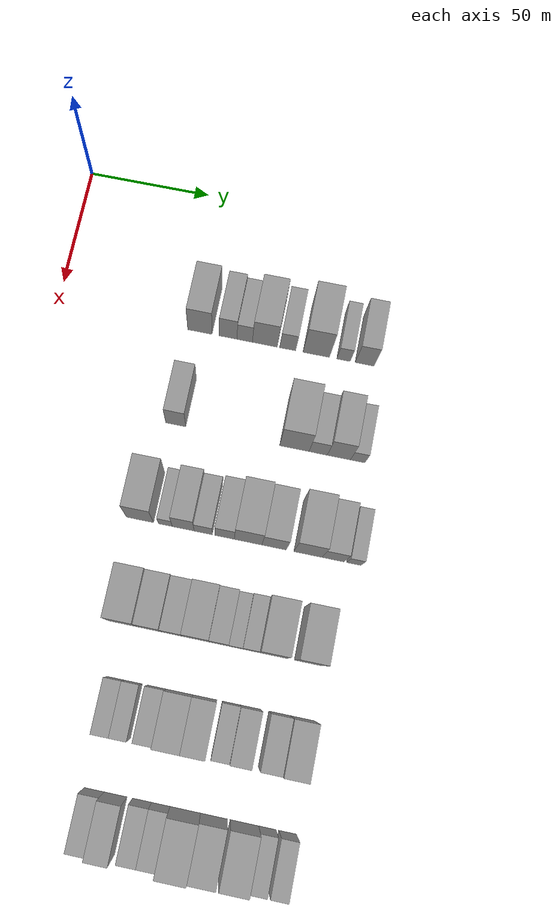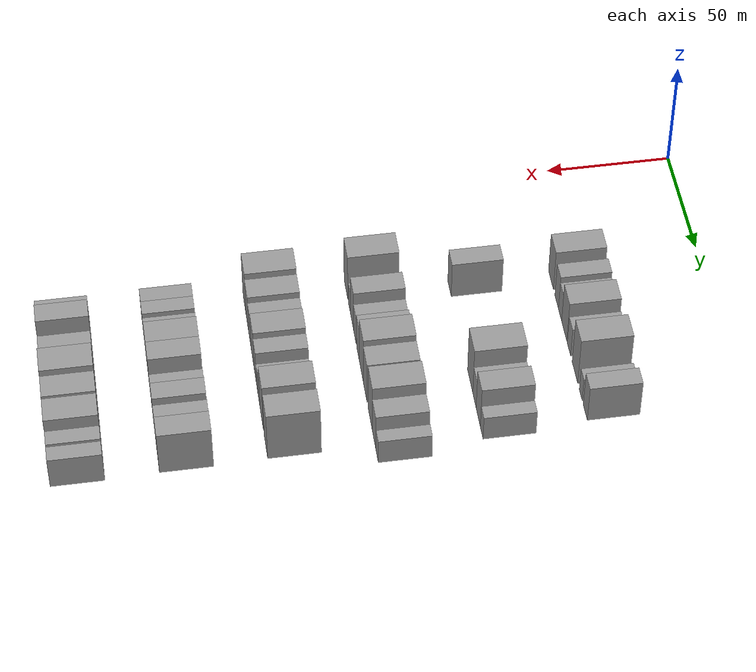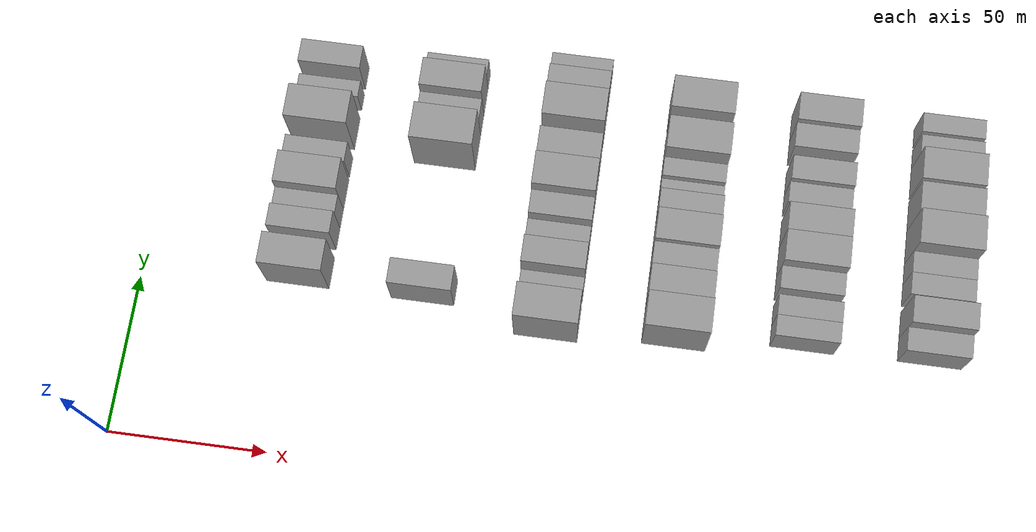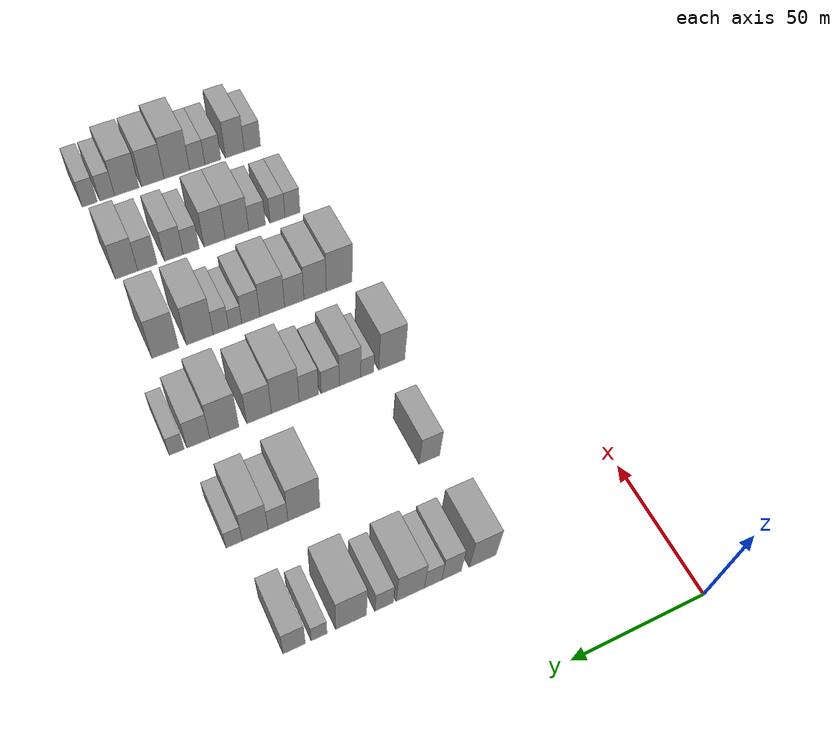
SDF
<sdf version="1.6">
 <world name="default">
  <model name="building_74">
   <static>1</static>
   <pose>50.0000 59.1140 0 0.000000 0.000000 0.000000</pose>
   <link name="link">
    <pose>0 0 10.50 0 0 0</pose>
    <collision name="collision"><geometry><box><size>20.0000 9.9876 21.0000</size></box></geometry></collision>
    <visual name="visual">
     <cast_shadows>0</cast_shadows>
     <geometry><box><size>20.0000 9.9876 21.0000</size></box></geometry>
     <material>
      <script>
       <uri>model://grey_wall/materials/scripts</uri>
       <uri>model://grey_wall/materials/textures</uri>
       <name>vrc/grey_wall</name>
      </script>
     </material>
    </visual>
   </link>
  </model>
  <model name="building_75">
   <static>1</static>
   <pose>50.0000 70.7340 0 0.000000 0.000000 0.000000</pose>
   <link name="link">
    <pose>0 0 9.00 0 0 0</pose>
    <collision name="collision"><geometry><box><size>20.0000 7.2524 18.0000</size></box></geometry></collision>
    <visual name="visual">
     <cast_shadows>0</cast_shadows>
     <geometry><box><size>20.0000 7.2524 18.0000</size></box></geometry>
     <material>
      <script>
       <uri>model://grey_wall/materials/scripts</uri>
       <uri>model://grey_wall/materials/textures</uri>
       <name>vrc/grey_wall</name>
      </script>
     </material>
    </visual>
   </link>
  </model>
  <model name="building_76">
   <static>1</static>
   <pose>50.0000 77.5407 0 0.000000 0.000000 0.000000</pose>
   <link name="link">
    <pose>0 0 7.50 0 0 0</pose>
    <collision name="collision"><geometry><box><size>20.0000 6.3612 15.0000</size></box></geometry></collision>
    <visual name="visual">
     <cast_shadows>0</cast_shadows>
     <geometry><box><size>20.0000 6.3612 15.0000</size></box></geometry>
     <material>
      <script>
       <uri>model://grey_wall/materials/scripts</uri>
       <uri>model://grey_wall/materials/textures</uri>
       <name>vrc/grey_wall</name>
      </script>
     </material>
    </visual>
   </link>
  </model>
  <model name="building_77">
   <static>1</static>
   <pose>50.0000 85.8204 0 0.000000 0.000000 0.000000</pose>
   <link name="link">
    <pose>0 0 10.50 0 0 0</pose>
    <collision name="collision"><geometry><box><size>20.0000 10.1982 21.0000</size></box></geometry></collision>
    <visual name="visual">
     <cast_shadows>0</cast_shadows>
     <geometry><box><size>20.0000 10.1982 21.0000</size></box></geometry>
     <material>
      <script>
       <uri>model://grey_wall/materials/scripts</uri>
       <uri>model://grey_wall/materials/textures</uri>
       <name>vrc/grey_wall</name>
      </script>
     </material>
    </visual>
   </link>
  </model>
  <model name="building_78">
   <static>1</static>
   <pose>50.0000 95.2017 0 0.000000 0.000000 0.000000</pose>
   <link name="link">
    <pose>0 0 7.50 0 0 0</pose>
    <collision name="collision"><geometry><box><size>20.0000 6.5644 15.0000</size></box></geometry></collision>
    <visual name="visual">
     <cast_shadows>0</cast_shadows>
     <geometry><box><size>20.0000 6.5644 15.0000</size></box></geometry>
     <material>
      <script>
       <uri>model://grey_wall/materials/scripts</uri>
       <uri>model://grey_wall/materials/textures</uri>
       <name>vrc/grey_wall</name>
      </script>
     </material>
    </visual>
   </link>
  </model>
  <model name="building_79">
   <static>1</static>
   <pose>50.0000 106.8875 0 0.000000 0.000000 0.000000</pose>
   <link name="link">
    <pose>0 0 12.00 0 0 0</pose>
    <collision name="collision"><geometry><box><size>20.0000 10.8072 24.0000</size></box></geometry></collision>
    <visual name="visual">
     <cast_shadows>0</cast_shadows>
     <geometry><box><size>20.0000 10.8072 24.0000</size></box></geometry>
     <material>
      <script>
       <uri>model://grey_wall/materials/scripts</uri>
       <uri>model://grey_wall/materials/textures</uri>
       <name>vrc/grey_wall</name>
      </script>
     </material>
    </visual>
   </link>
  </model>
  <model name="building_80">
   <static>1</static>
   <pose>50.0000 118.0348 0 0.000000 0.000000 0.000000</pose>
   <link name="link">
    <pose>0 0 6.00 0 0 0</pose>
    <collision name="collision"><geometry><box><size>20.0000 5.4872 12.0000</size></box></geometry></collision>
    <visual name="visual">
     <cast_shadows>0</cast_shadows>
     <geometry><box><size>20.0000 5.4872 12.0000</size></box></geometry>
     <material>
      <script>
       <uri>model://grey_wall/materials/scripts</uri>
       <uri>model://grey_wall/materials/textures</uri>
       <name>vrc/grey_wall</name>
      </script>
     </material>
    </visual>
   </link>
  </model>
  <model name="building_81">
   <static>1</static>
   <pose>50.0000 126.5961 0 0.000000 0.000000 0.000000</pose>
   <link name="link">
    <pose>0 0 9.00 0 0 0</pose>
    <collision name="collision"><geometry><box><size>20.0000 7.6355 18.0000</size></box></geometry></collision>
    <visual name="visual">
     <cast_shadows>0</cast_shadows>
     <geometry><box><size>20.0000 7.6355 18.0000</size></box></geometry>
     <material>
      <script>
       <uri>model://grey_wall/materials/scripts</uri>
       <uri>model://grey_wall/materials/textures</uri>
       <name>vrc/grey_wall</name>
      </script>
     </material>
    </visual>
   </link>
  </model>
  <model name="building_214">
   <static>1</static>
   <pose>90.0000 57.9060 0 0.000000 0.000000 0.000000</pose>
   <link name="link">
    <pose>0 0 9.00 0 0 0</pose>
    <collision name="collision"><geometry><box><size>20.0000 8.0514 18.0000</size></box></geometry></collision>
    <visual name="visual">
     <cast_shadows>0</cast_shadows>
     <geometry><box><size>20.0000 8.0514 18.0000</size></box></geometry>
     <material>
      <script>
       <uri>model://grey_wall/materials/scripts</uri>
       <uri>model://grey_wall/materials/textures</uri>
       <name>vrc/grey_wall</name>
      </script>
     </material>
    </visual>
   </link>
  </model>
  <model name="building_215">
   <static>1</static>
   <pose>90.0000 105.5255 0 0.000000 0.000000 0.000000</pose>
   <link name="link">
    <pose>0 0 12.00 0 0 0</pose>
    <collision name="collision"><geometry><box><size>20.0000 11.7292 24.0000</size></box></geometry></collision>
    <visual name="visual">
     <cast_shadows>0</cast_shadows>
     <geometry><box><size>20.0000 11.7292 24.0000</size></box></geometry>
     <material>
      <script>
       <uri>model://grey_wall/materials/scripts</uri>
       <uri>model://grey_wall/materials/textures</uri>
       <name>vrc/grey_wall</name>
      </script>
     </material>
    </visual>
   </link>
  </model>
  <model name="building_216">
   <static>1</static>
   <pose>90.0000 115.0183 0 0.000000 0.000000 0.000000</pose>
   <link name="link">
    <pose>0 0 7.50 0 0 0</pose>
    <collision name="collision"><geometry><box><size>20.0000 7.2564 15.0000</size></box></geometry></collision>
    <visual name="visual">
     <cast_shadows>0</cast_shadows>
     <geometry><box><size>20.0000 7.2564 15.0000</size></box></geometry>
     <material>
      <script>
       <uri>model://grey_wall/materials/scripts</uri>
       <uri>model://grey_wall/materials/textures</uri>
       <name>vrc/grey_wall</name>
      </script>
     </material>
    </visual>
   </link>
  </model>
  <model name="building_217">
   <static>1</static>
   <pose>90.0000 123.2755 0 0.000000 0.000000 0.000000</pose>
   <link name="link">
    <pose>0 0 10.50 0 0 0</pose>
    <collision name="collision"><geometry><box><size>20.0000 9.2580 21.0000</size></box></geometry></collision>
    <visual name="visual">
     <cast_shadows>0</cast_shadows>
     <geometry><box><size>20.0000 9.2580 21.0000</size></box></geometry>
     <material>
      <script>
       <uri>model://grey_wall/materials/scripts</uri>
       <uri>model://grey_wall/materials/textures</uri>
       <name>vrc/grey_wall</name>
      </script>
     </material>
    </visual>
   </link>
  </model>
  <model name="building_218">
   <static>1</static>
   <pose>90.0000 130.7831 0 0.000000 0.000000 0.000000</pose>
   <link name="link">
    <pose>0 0 6.00 0 0 0</pose>
    <collision name="collision"><geometry><box><size>20.0000 5.7571 12.0000</size></box></geometry></collision>
    <visual name="visual">
     <cast_shadows>0</cast_shadows>
     <geometry><box><size>20.0000 5.7571 12.0000</size></box></geometry>
     <material>
      <script>
       <uri>model://grey_wall/materials/scripts</uri>
       <uri>model://grey_wall/materials/textures</uri>
       <name>vrc/grey_wall</name>
      </script>
     </material>
    </visual>
   </link>
  </model>
  <model name="building_352">
   <static>1</static>
   <pose>130.0000 52.5645 0 0.000000 0.000000 0.000000</pose>
   <link name="link">
    <pose>0 0 12.00 0 0 0</pose>
    <collision name="collision"><geometry><box><size>20.0000 10.6612 24.0000</size></box></geometry></collision>
    <visual name="visual">
     <cast_shadows>0</cast_shadows>
     <geometry><box><size>20.0000 10.6612 24.0000</size></box></geometry>
     <material>
      <script>
       <uri>model://grey_wall/materials/scripts</uri>
       <uri>model://grey_wall/materials/textures</uri>
       <name>vrc/grey_wall</name>
      </script>
     </material>
    </visual>
   </link>
  </model>
  <model name="building_353">
   <static>1</static>
   <pose>130.0000 62.5911 0 0.000000 0.000000 0.000000</pose>
   <link name="link">
    <pose>0 0 6.00 0 0 0</pose>
    <collision name="collision"><geometry><box><size>20.0000 5.3920 12.0000</size></box></geometry></collision>
    <visual name="visual">
     <cast_shadows>0</cast_shadows>
     <geometry><box><size>20.0000 5.3920 12.0000</size></box></geometry>
     <material>
      <script>
       <uri>model://grey_wall/materials/scripts</uri>
       <uri>model://grey_wall/materials/textures</uri>
       <name>vrc/grey_wall</name>
      </script>
     </material>
    </visual>
   </link>
  </model>
  <model name="building_354">
   <static>1</static>
   <pose>130.0000 69.5810 0 0.000000 0.000000 0.000000</pose>
   <link name="link">
    <pose>0 0 10.50 0 0 0</pose>
    <collision name="collision"><geometry><box><size>20.0000 8.5878 21.0000</size></box></geometry></collision>
    <visual name="visual">
     <cast_shadows>0</cast_shadows>
     <geometry><box><size>20.0000 8.5878 21.0000</size></box></geometry>
     <material>
      <script>
       <uri>model://grey_wall/materials/scripts</uri>
       <uri>model://grey_wall/materials/textures</uri>
       <name>vrc/grey_wall</name>
      </script>
     </material>
    </visual>
   </link>
  </model>
  <model name="building_355">
   <static>1</static>
   <pose>130.0000 77.4540 0 0.000000 0.000000 0.000000</pose>
   <link name="link">
    <pose>0 0 7.50 0 0 0</pose>
    <collision name="collision"><geometry><box><size>20.0000 7.1582 15.0000</size></box></geometry></collision>
    <visual name="visual">
     <cast_shadows>0</cast_shadows>
     <geometry><box><size>20.0000 7.1582 15.0000</size></box></geometry>
     <material>
      <script>
       <uri>model://grey_wall/materials/scripts</uri>
       <uri>model://grey_wall/materials/textures</uri>
       <name>vrc/grey_wall</name>
      </script>
     </material>
    </visual>
   </link>
  </model>
  <model name="building_356">
   <static>1</static>
   <pose>130.0000 85.8312 0 0.000000 0.000000 0.000000</pose>
   <link name="link">
    <pose>0 0 9.00 0 0 0</pose>
    <collision name="collision"><geometry><box><size>20.0000 7.5961 18.0000</size></box></geometry></collision>
    <visual name="visual">
     <cast_shadows>0</cast_shadows>
     <geometry><box><size>20.0000 7.5961 18.0000</size></box></geometry>
     <material>
      <script>
       <uri>model://grey_wall/materials/scripts</uri>
       <uri>model://grey_wall/materials/textures</uri>
       <name>vrc/grey_wall</name>
      </script>
     </material>
    </visual>
   </link>
  </model>
  <model name="building_357">
   <static>1</static>
   <pose>130.0000 95.0210 0 0.000000 0.000000 0.000000</pose>
   <link name="link">
    <pose>0 0 12.00 0 0 0</pose>
    <collision name="collision"><geometry><box><size>20.0000 10.7835 24.0000</size></box></geometry></collision>
    <visual name="visual">
     <cast_shadows>0</cast_shadows>
     <geometry><box><size>20.0000 10.7835 24.0000</size></box></geometry>
     <material>
      <script>
       <uri>model://grey_wall/materials/scripts</uri>
       <uri>model://grey_wall/materials/textures</uri>
       <name>vrc/grey_wall</name>
      </script>
     </material>
    </visual>
   </link>
  </model>
  <model name="building_358">
   <static>1</static>
   <pose>130.0000 105.1671 0 0.000000 0.000000 0.000000</pose>
   <link name="link">
    <pose>0 0 10.50 0 0 0</pose>
    <collision name="collision"><geometry><box><size>20.0000 9.5088 21.0000</size></box></geometry></collision>
    <visual name="visual">
     <cast_shadows>0</cast_shadows>
     <geometry><box><size>20.0000 9.5088 21.0000</size></box></geometry>
     <material>
      <script>
       <uri>model://grey_wall/materials/scripts</uri>
       <uri>model://grey_wall/materials/textures</uri>
       <name>vrc/grey_wall</name>
      </script>
     </material>
    </visual>
   </link>
  </model>
  <model name="building_359">
   <static>1</static>
   <pose>130.0000 118.3889 0 0.000000 0.000000 0.000000</pose>
   <link name="link">
    <pose>0 0 12.00 0 0 0</pose>
    <collision name="collision"><geometry><box><size>20.0000 10.9349 24.0000</size></box></geometry></collision>
    <visual name="visual">
     <cast_shadows>0</cast_shadows>
     <geometry><box><size>20.0000 10.9349 24.0000</size></box></geometry>
     <material>
      <script>
       <uri>model://grey_wall/materials/scripts</uri>
       <uri>model://grey_wall/materials/textures</uri>
       <name>vrc/grey_wall</name>
      </script>
     </material>
    </visual>
   </link>
  </model>
  <model name="building_360">
   <static>1</static>
   <pose>130.0000 128.1711 0 0.000000 0.000000 0.000000</pose>
   <link name="link">
    <pose>0 0 9.00 0 0 0</pose>
    <collision name="collision"><geometry><box><size>20.0000 8.6294 18.0000</size></box></geometry></collision>
    <visual name="visual">
     <cast_shadows>0</cast_shadows>
     <geometry><box><size>20.0000 8.6294 18.0000</size></box></geometry>
     <material>
      <script>
       <uri>model://grey_wall/materials/scripts</uri>
       <uri>model://grey_wall/materials/textures</uri>
       <name>vrc/grey_wall</name>
      </script>
     </material>
    </visual>
   </link>
  </model>
  <model name="building_361">
   <static>1</static>
   <pose>130.0000 136.2585 0 0.000000 0.000000 0.000000</pose>
   <link name="link">
    <pose>0 0 6.00 0 0 0</pose>
    <collision name="collision"><geometry><box><size>20.0000 5.5454 12.0000</size></box></geometry></collision>
    <visual name="visual">
     <cast_shadows>0</cast_shadows>
     <geometry><box><size>20.0000 5.5454 12.0000</size></box></geometry>
     <material>
      <script>
       <uri>model://grey_wall/materials/scripts</uri>
       <uri>model://grey_wall/materials/textures</uri>
       <name>vrc/grey_wall</name>
      </script>
     </material>
    </visual>
   </link>
  </model>
  <model name="building_480">
   <static>1</static>
   <pose>170.0000 55.1960 0 0.000000 0.000000 0.000000</pose>
   <link name="link">
    <pose>0 0 12.00 0 0 0</pose>
    <collision name="collision"><geometry><box><size>20.0000 10.9335 24.0000</size></box></geometry></collision>
    <visual name="visual">
     <cast_shadows>0</cast_shadows>
     <geometry><box><size>20.0000 10.9335 24.0000</size></box></geometry>
     <material>
      <script>
       <uri>model://grey_wall/materials/scripts</uri>
       <uri>model://grey_wall/materials/textures</uri>
       <name>vrc/grey_wall</name>
      </script>
     </material>
    </visual>
   </link>
  </model>
  <model name="building_481">
   <static>1</static>
   <pose>170.0000 65.3570 0 0.000000 0.000000 0.000000</pose>
   <link name="link">
    <pose>0 0 10.50 0 0 0</pose>
    <collision name="collision"><geometry><box><size>20.0000 9.3886 21.0000</size></box></geometry></collision>
    <visual name="visual">
     <cast_shadows>0</cast_shadows>
     <geometry><box><size>20.0000 9.3886 21.0000</size></box></geometry>
     <material>
      <script>
       <uri>model://grey_wall/materials/scripts</uri>
       <uri>model://grey_wall/materials/textures</uri>
       <name>vrc/grey_wall</name>
      </script>
     </material>
    </visual>
   </link>
  </model>
  <model name="building_482">
   <static>1</static>
   <pose>170.0000 74.0606 0 0.000000 0.000000 0.000000</pose>
   <link name="link">
    <pose>0 0 9.00 0 0 0</pose>
    <collision name="collision"><geometry><box><size>20.0000 8.0186 18.0000</size></box></geometry></collision>
    <visual name="visual">
     <cast_shadows>0</cast_shadows>
     <geometry><box><size>20.0000 8.0186 18.0000</size></box></geometry>
     <material>
      <script>
       <uri>model://grey_wall/materials/scripts</uri>
       <uri>model://grey_wall/materials/textures</uri>
       <name>vrc/grey_wall</name>
      </script>
     </material>
    </visual>
   </link>
  </model>
  <model name="building_483">
   <static>1</static>
   <pose>170.0000 83.1466 0 0.000000 0.000000 0.000000</pose>
   <link name="link">
    <pose>0 0 10.50 0 0 0</pose>
    <collision name="collision"><geometry><box><size>20.0000 10.1533 21.0000</size></box></geometry></collision>
    <visual name="visual">
     <cast_shadows>0</cast_shadows>
     <geometry><box><size>20.0000 10.1533 21.0000</size></box></geometry>
     <material>
      <script>
       <uri>model://grey_wall/materials/scripts</uri>
       <uri>model://grey_wall/materials/textures</uri>
       <name>vrc/grey_wall</name>
      </script>
     </material>
    </visual>
   </link>
  </model>
  <model name="building_484">
   <static>1</static>
   <pose>170.0000 91.8984 0 0.000000 0.000000 0.000000</pose>
   <link name="link">
    <pose>0 0 9.00 0 0 0</pose>
    <collision name="collision"><geometry><box><size>20.0000 7.3505 18.0000</size></box></geometry></collision>
    <visual name="visual">
     <cast_shadows>0</cast_shadows>
     <geometry><box><size>20.0000 7.3505 18.0000</size></box></geometry>
     <material>
      <script>
       <uri>model://grey_wall/materials/scripts</uri>
       <uri>model://grey_wall/materials/textures</uri>
       <name>vrc/grey_wall</name>
      </script>
     </material>
    </visual>
   </link>
  </model>
  <model name="building_485">
   <static>1</static>
   <pose>170.0000 98.1914 0 0.000000 0.000000 0.000000</pose>
   <link name="link">
    <pose>0 0 6.00 0 0 0</pose>
    <collision name="collision"><geometry><box><size>20.0000 5.2354 12.0000</size></box></geometry></collision>
    <visual name="visual">
     <cast_shadows>0</cast_shadows>
     <geometry><box><size>20.0000 5.2354 12.0000</size></box></geometry>
     <material>
      <script>
       <uri>model://grey_wall/materials/scripts</uri>
       <uri>model://grey_wall/materials/textures</uri>
       <name>vrc/grey_wall</name>
      </script>
     </material>
    </visual>
   </link>
  </model>
  <model name="building_486">
   <static>1</static>
   <pose>170.0000 103.9123 0 0.000000 0.000000 0.000000</pose>
   <link name="link">
    <pose>0 0 7.50 0 0 0</pose>
    <collision name="collision"><geometry><box><size>20.0000 6.2065 15.0000</size></box></geometry></collision>
    <visual name="visual">
     <cast_shadows>0</cast_shadows>
     <geometry><box><size>20.0000 6.2065 15.0000</size></box></geometry>
     <material>
      <script>
       <uri>model://grey_wall/materials/scripts</uri>
       <uri>model://grey_wall/materials/textures</uri>
       <name>vrc/grey_wall</name>
      </script>
     </material>
    </visual>
   </link>
  </model>
  <model name="building_487">
   <static>1</static>
   <pose>170.0000 112.3662 0 0.000000 0.000000 0.000000</pose>
   <link name="link">
    <pose>0 0 12.00 0 0 0</pose>
    <collision name="collision"><geometry><box><size>20.0000 10.7012 24.0000</size></box></geometry></collision>
    <visual name="visual">
     <cast_shadows>0</cast_shadows>
     <geometry><box><size>20.0000 10.7012 24.0000</size></box></geometry>
     <material>
      <script>
       <uri>model://grey_wall/materials/scripts</uri>
       <uri>model://grey_wall/materials/textures</uri>
       <name>vrc/grey_wall</name>
      </script>
     </material>
    </visual>
   </link>
  </model>
  <model name="building_488">
   <static>1</static>
   <pose>170.0000 125.9970 0 0.000000 0.000000 0.000000</pose>
   <link name="link">
    <pose>0 0 12.00 0 0 0</pose>
    <collision name="collision"><geometry><box><size>20.0000 10.5605 24.0000</size></box></geometry></collision>
    <visual name="visual">
     <cast_shadows>0</cast_shadows>
     <geometry><box><size>20.0000 10.5605 24.0000</size></box></geometry>
     <material>
      <script>
       <uri>model://grey_wall/materials/scripts</uri>
       <uri>model://grey_wall/materials/textures</uri>
       <name>vrc/grey_wall</name>
      </script>
     </material>
    </visual>
   </link>
  </model>
  <model name="building_622">
   <static>1</static>
   <pose>210.0000 57.3634 0 0.000000 0.000000 0.000000</pose>
   <link name="link">
    <pose>0 0 7.50 0 0 0</pose>
    <collision name="collision"><geometry><box><size>20.0000 6.5930 15.0000</size></box></geometry></collision>
    <visual name="visual">
     <cast_shadows>0</cast_shadows>
     <geometry><box><size>20.0000 6.5930 15.0000</size></box></geometry>
     <material>
      <script>
       <uri>model://grey_wall/materials/scripts</uri>
       <uri>model://grey_wall/materials/textures</uri>
       <name>vrc/grey_wall</name>
      </script>
     </material>
    </visual>
   </link>
  </model>
  <model name="building_623">
   <static>1</static>
   <pose>210.0000 63.9002 0 0.000000 0.000000 0.000000</pose>
   <link name="link">
    <pose>0 0 7.50 0 0 0</pose>
    <collision name="collision"><geometry><box><size>20.0000 6.4807 15.0000</size></box></geometry></collision>
    <visual name="visual">
     <cast_shadows>0</cast_shadows>
     <geometry><box><size>20.0000 6.4807 15.0000</size></box></geometry>
     <material>
      <script>
       <uri>model://grey_wall/materials/scripts</uri>
       <uri>model://grey_wall/materials/textures</uri>
       <name>vrc/grey_wall</name>
      </script>
     </material>
    </visual>
   </link>
  </model>
  <model name="building_624">
   <static>1</static>
   <pose>210.0000 72.7773 0 0.000000 0.000000 0.000000</pose>
   <link name="link">
    <pose>0 0 7.50 0 0 0</pose>
    <collision name="collision"><geometry><box><size>20.0000 7.2734 15.0000</size></box></geometry></collision>
    <visual name="visual">
     <cast_shadows>0</cast_shadows>
     <geometry><box><size>20.0000 7.2734 15.0000</size></box></geometry>
     <material>
      <script>
       <uri>model://grey_wall/materials/scripts</uri>
       <uri>model://grey_wall/materials/textures</uri>
       <name>vrc/grey_wall</name>
      </script>
     </material>
    </visual>
   </link>
  </model>
  <model name="building_625">
   <static>1</static>
   <pose>210.0000 81.4391 0 0.000000 0.000000 0.000000</pose>
   <link name="link">
    <pose>0 0 10.50 0 0 0</pose>
    <collision name="collision"><geometry><box><size>20.0000 10.0503 21.0000</size></box></geometry></collision>
    <visual name="visual">
     <cast_shadows>0</cast_shadows>
     <geometry><box><size>20.0000 10.0503 21.0000</size></box></geometry>
     <material>
      <script>
       <uri>model://grey_wall/materials/scripts</uri>
       <uri>model://grey_wall/materials/textures</uri>
       <name>vrc/grey_wall</name>
      </script>
     </material>
    </visual>
   </link>
  </model>
  <model name="building_626">
   <static>1</static>
   <pose>210.0000 90.9266 0 0.000000 0.000000 0.000000</pose>
   <link name="link">
    <pose>0 0 10.50 0 0 0</pose>
    <collision name="collision"><geometry><box><size>20.0000 8.9247 21.0000</size></box></geometry></collision>
    <visual name="visual">
     <cast_shadows>0</cast_shadows>
     <geometry><box><size>20.0000 8.9247 21.0000</size></box></geometry>
     <material>
      <script>
       <uri>model://grey_wall/materials/scripts</uri>
       <uri>model://grey_wall/materials/textures</uri>
       <name>vrc/grey_wall</name>
      </script>
     </material>
    </visual>
   </link>
  </model>
  <model name="building_627">
   <static>1</static>
   <pose>210.0000 100.7493 0 0.000000 0.000000 0.000000</pose>
   <link name="link">
    <pose>0 0 7.50 0 0 0</pose>
    <collision name="collision"><geometry><box><size>20.0000 6.7205 15.0000</size></box></geometry></collision>
    <visual name="visual">
     <cast_shadows>0</cast_shadows>
     <geometry><box><size>20.0000 6.7205 15.0000</size></box></geometry>
     <material>
      <script>
       <uri>model://grey_wall/materials/scripts</uri>
       <uri>model://grey_wall/materials/textures</uri>
       <name>vrc/grey_wall</name>
      </script>
     </material>
    </visual>
   </link>
  </model>
  <model name="building_628">
   <static>1</static>
   <pose>210.0000 108.0043 0 0.000000 0.000000 0.000000</pose>
   <link name="link">
    <pose>0 0 9.00 0 0 0</pose>
    <collision name="collision"><geometry><box><size>20.0000 7.7896 18.0000</size></box></geometry></collision>
    <visual name="visual">
     <cast_shadows>0</cast_shadows>
     <geometry><box><size>20.0000 7.7896 18.0000</size></box></geometry>
     <material>
      <script>
       <uri>model://grey_wall/materials/scripts</uri>
       <uri>model://grey_wall/materials/textures</uri>
       <name>vrc/grey_wall</name>
      </script>
     </material>
    </visual>
   </link>
  </model>
  <model name="building_629">
   <static>1</static>
   <pose>210.0000 118.9035 0 0.000000 0.000000 0.000000</pose>
   <link name="link">
    <pose>0 0 9.00 0 0 0</pose>
    <collision name="collision"><geometry><box><size>20.0000 8.0087 18.0000</size></box></geometry></collision>
    <visual name="visual">
     <cast_shadows>0</cast_shadows>
     <geometry><box><size>20.0000 8.0087 18.0000</size></box></geometry>
     <material>
      <script>
       <uri>model://grey_wall/materials/scripts</uri>
       <uri>model://grey_wall/materials/textures</uri>
       <name>vrc/grey_wall</name>
      </script>
     </material>
    </visual>
   </link>
  </model>
  <model name="building_630">
   <static>1</static>
   <pose>210.0000 127.4762 0 0.000000 0.000000 0.000000</pose>
   <link name="link">
    <pose>0 0 10.50 0 0 0</pose>
    <collision name="collision"><geometry><box><size>20.0000 9.1366 21.0000</size></box></geometry></collision>
    <visual name="visual">
     <cast_shadows>0</cast_shadows>
     <geometry><box><size>20.0000 9.1366 21.0000</size></box></geometry>
     <material>
      <script>
       <uri>model://grey_wall/materials/scripts</uri>
       <uri>model://grey_wall/materials/textures</uri>
       <name>vrc/grey_wall</name>
      </script>
     </material>
    </visual>
   </link>
  </model>
  <model name="building_761">
   <static>1</static>
   <pose>250.0000 58.3201 0 0.000000 0.000000 0.000000</pose>
   <link name="link">
    <pose>0 0 7.50 0 0 0</pose>
    <collision name="collision"><geometry><box><size>20.0000 7.4149 15.0000</size></box></geometry></collision>
    <visual name="visual">
     <cast_shadows>0</cast_shadows>
     <geometry><box><size>20.0000 7.4149 15.0000</size></box></geometry>
     <material>
      <script>
       <uri>model://grey_wall/materials/scripts</uri>
       <uri>model://grey_wall/materials/textures</uri>
       <name>vrc/grey_wall</name>
      </script>
     </material>
    </visual>
   </link>
  </model>
  <model name="building_762">
   <static>1</static>
   <pose>250.0000 66.2844 0 0.000000 0.000000 0.000000</pose>
   <link name="link">
    <pose>0 0 10.50 0 0 0</pose>
    <collision name="collision"><geometry><box><size>20.0000 8.5137 21.0000</size></box></geometry></collision>
    <visual name="visual">
     <cast_shadows>0</cast_shadows>
     <geometry><box><size>20.0000 8.5137 21.0000</size></box></geometry>
     <material>
      <script>
       <uri>model://grey_wall/materials/scripts</uri>
       <uri>model://grey_wall/materials/textures</uri>
       <name>vrc/grey_wall</name>
      </script>
     </material>
    </visual>
   </link>
  </model>
  <model name="building_763">
   <static>1</static>
   <pose>250.0000 76.0891 0 0.000000 0.000000 0.000000</pose>
   <link name="link">
    <pose>0 0 7.50 0 0 0</pose>
    <collision name="collision"><geometry><box><size>20.0000 7.0958 15.0000</size></box></geometry></collision>
    <visual name="visual">
     <cast_shadows>0</cast_shadows>
     <geometry><box><size>20.0000 7.0958 15.0000</size></box></geometry>
     <material>
      <script>
       <uri>model://grey_wall/materials/scripts</uri>
       <uri>model://grey_wall/materials/textures</uri>
       <name>vrc/grey_wall</name>
      </script>
     </material>
    </visual>
   </link>
  </model>
  <model name="building_764">
   <static>1</static>
   <pose>250.0000 83.0534 0 0.000000 0.000000 0.000000</pose>
   <link name="link">
    <pose>0 0 7.50 0 0 0</pose>
    <collision name="collision"><geometry><box><size>20.0000 6.8328 15.0000</size></box></geometry></collision>
    <visual name="visual">
     <cast_shadows>0</cast_shadows>
     <geometry><box><size>20.0000 6.8328 15.0000</size></box></geometry>
     <material>
      <script>
       <uri>model://grey_wall/materials/scripts</uri>
       <uri>model://grey_wall/materials/textures</uri>
       <name>vrc/grey_wall</name>
      </script>
     </material>
    </visual>
   </link>
  </model>
  <model name="building_765">
   <static>1</static>
   <pose>250.0000 92.0472 0 0.000000 0.000000 0.000000</pose>
   <link name="link">
    <pose>0 0 12.00 0 0 0</pose>
    <collision name="collision"><geometry><box><size>20.0000 11.1550 24.0000</size></box></geometry></collision>
    <visual name="visual">
     <cast_shadows>0</cast_shadows>
     <geometry><box><size>20.0000 11.1550 24.0000</size></box></geometry>
     <material>
      <script>
       <uri>model://grey_wall/materials/scripts</uri>
       <uri>model://grey_wall/materials/textures</uri>
       <name>vrc/grey_wall</name>
      </script>
     </material>
    </visual>
   </link>
  </model>
  <model name="building_766">
   <static>1</static>
   <pose>250.0000 102.5761 0 0.000000 0.000000 0.000000</pose>
   <link name="link">
    <pose>0 0 10.50 0 0 0</pose>
    <collision name="collision"><geometry><box><size>20.0000 9.9027 21.0000</size></box></geometry></collision>
    <visual name="visual">
     <cast_shadows>0</cast_shadows>
     <geometry><box><size>20.0000 9.9027 21.0000</size></box></geometry>
     <material>
      <script>
       <uri>model://grey_wall/materials/scripts</uri>
       <uri>model://grey_wall/materials/textures</uri>
       <name>vrc/grey_wall</name>
      </script>
     </material>
    </visual>
   </link>
  </model>
  <model name="building_767">
   <static>1</static>
   <pose>250.0000 113.7744 0 0.000000 0.000000 0.000000</pose>
   <link name="link">
    <pose>0 0 10.50 0 0 0</pose>
    <collision name="collision"><geometry><box><size>20.0000 10.4939 21.0000</size></box></geometry></collision>
    <visual name="visual">
     <cast_shadows>0</cast_shadows>
     <geometry><box><size>20.0000 10.4939 21.0000</size></box></geometry>
     <material>
      <script>
       <uri>model://grey_wall/materials/scripts</uri>
       <uri>model://grey_wall/materials/textures</uri>
       <name>vrc/grey_wall</name>
      </script>
     </material>
    </visual>
   </link>
  </model>
  <model name="building_768">
   <static>1</static>
   <pose>250.0000 122.1995 0 0.000000 0.000000 0.000000</pose>
   <link name="link">
    <pose>0 0 7.50 0 0 0</pose>
    <collision name="collision"><geometry><box><size>20.0000 6.3563 15.0000</size></box></geometry></collision>
    <visual name="visual">
     <cast_shadows>0</cast_shadows>
     <geometry><box><size>20.0000 6.3563 15.0000</size></box></geometry>
     <material>
      <script>
       <uri>model://grey_wall/materials/scripts</uri>
       <uri>model://grey_wall/materials/textures</uri>
       <name>vrc/grey_wall</name>
      </script>
     </material>
    </visual>
   </link>
  </model>
  <model name="building_769">
   <static>1</static>
   <pose>250.0000 129.5859 0 0.000000 0.000000 0.000000</pose>
   <link name="link">
    <pose>0 0 7.50 0 0 0</pose>
    <collision name="collision"><geometry><box><size>20.0000 6.4165 15.0000</size></box></geometry></collision>
    <visual name="visual">
     <cast_shadows>0</cast_shadows>
     <geometry><box><size>20.0000 6.4165 15.0000</size></box></geometry>
     <material>
      <script>
       <uri>model://grey_wall/materials/scripts</uri>
       <uri>model://grey_wall/materials/textures</uri>
       <name>vrc/grey_wall</name>
      </script>
     </material>
    </visual>
   </link>
  </model>
 </world>
</sdf>
